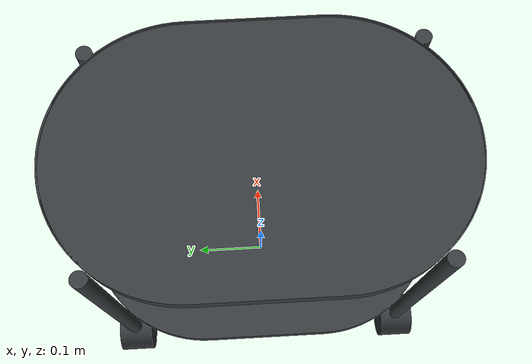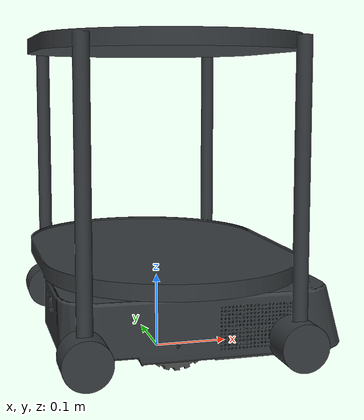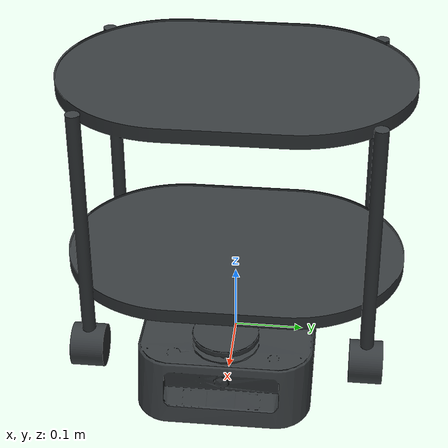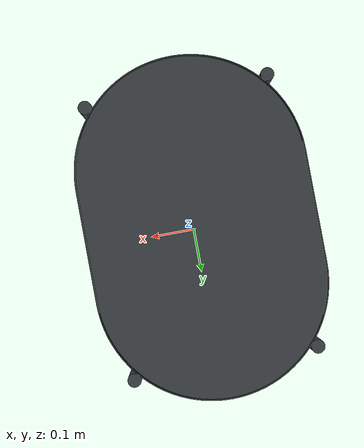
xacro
<?xml version="1.0" ?>
<robot name="erasers_kachaka" xmlns:xacro="http://ros.org/wiki/xacro">
  <xacro:include filename="$(find erasers_kachaka_description)/urdf/_kachaka.urdf.xacro" />
  <xacro:include filename="$(find kachaka_description)/urdf/_materials.urdf.xacro" />
  <xacro:include filename="$(find kachaka_description)/urdf/_values.urdf.xacro" />
  <xacro:arg name="shelf_type" default="2" />
  <xacro:property name="shelf_type" value="$(arg shelf_type)" />

  <xacro:if value="${int(shelf_type) != 0}">
    <xacro:include filename="$(find kachaka_shelf_description)/urdf/shelf.urdf.xacro" />
  </xacro:if>

  <link name="base_footprint" />
  <xacro:kachaka_robot parent="base_footprint">
    <origin xyz="0 0 0" rpy="0 0 0"/>
  </xacro:kachaka_robot>

  <xacro:if value="${int(shelf_type) != 0}">
    <xacro:kachaka_shelf shelf_type="${shelf_type}" />
  </xacro:if>
</robot>

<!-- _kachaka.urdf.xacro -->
<robot name="kachaka_robot" xmlns:xacro="http://ros.org/wiki/xacro">
  <xacro:macro name="kachaka_robot" params="parent *origin">
    <!-- base_footprint -->
    <joint name="base_footprint_joint"
          type="fixed">
      <parent link="${parent}" />
      <child link="base_link" />
      <xacro:insert_block name="origin" />
    </joint>
    <link name="base_link">
      <inertial>
        <mass value="10.0" />
        <origin xyz="0.0435 0.0 0.0475"
                rpy="0 0 0" />
        <inertia ixx="${1/12*10*(0.095**2+0.240**2)}" ixy="0" ixz="0"
                iyy="${1/12*10*(0.095**2+0.387**2)}" iyz="0"
                izz="${1/12*10*(0.387**2+0.240**2)}" />
      </inertial>
      <visual>
        <origin rpy="0 0 0" xyz="-0.150 -0.120 0.0"/>
        <geometry>
          <mesh filename="package://kachaka_description/meshes/kachaka/body.stl"/>
        </geometry>
        <material name="body" />
      </visual>
      <collision>
        <origin xyz="0.0435 0.0 0.0475"
                rpy="0 0 0" />
        <geometry>
          <box size="0.387 0.240 0.095" />
        </geometry>
        <material name="body" />
      </collision>
    </link>

    <!-- Wheel(right) -->
    <joint name="base_r_drive_wheel_joint"
          type="continuous">
      <parent link="base_link" />
      <child link="base_r_drive_wheel_link" />
      <origin rpy="0 0 0"
              xyz="0.0 -0.100 0.045" />
      <axis xyz="0 1 0" />
      <limit velocity="10"
            effort="100" />
    </joint>
    <link name="base_r_drive_wheel_link">
      <inertial>
        <mass value="0.2" /> <!-- TODO - Update mass value -->
        <origin xyz="0 0 0"
                rpy="${PI / 2.0} 0 0" />
        <!-- Bug - inertial rotation is not reflected in Rviz2 -->
        <!-- https://github.com/ros2/rviz/pull/1316 -->
        <inertia ixx="${1/12*0.2*(3*0.045**2+0.025**2)}" ixy="0" ixz="0"
                iyy="${1/12*0.2*(3*0.045**2+0.025**2)}" iyz="0"
                izz="${1/2*0.2*(0.045**2)}" />
      </inertial>
      <visual>
        <origin rpy="0 0 0" xyz="0 0 0"/>
        <geometry>
          <mesh filename="package://kachaka_description/meshes/kachaka/right_tire.stl" scale="1.0 1.0 1.0"/>
        </geometry>
        <material name="tire" />
      </visual>
      <collision>
        <origin xyz="0 0 0"
                rpy="${PI / 2.0} 0 0" />
        <geometry>
          <cylinder length="0.025"
                    radius="0.045" />
        </geometry>
        <material name="tire" />
      </collision>
    </link>

    <!-- Wheel(left) -->
    <joint name="base_l_drive_wheel_joint"
          type="continuous">
      <parent link="base_link" />
      <child link="base_l_drive_wheel_link" />
      <origin rpy="0 0 0"
              xyz="0.0 0.100 0.045" />
      <axis xyz="0 1 0" />
      <limit velocity="10"
            effort="100" />
    </joint>
    <link name="base_l_drive_wheel_link">
      <inertial>
        <mass value="0.2" />
        <origin xyz="0 0 0"
                rpy="${PI / 2.0} 0 0" />
        <!-- Bug - inertial rotation is not reflected in Rviz2 -->
        <!-- https://github.com/ros2/rviz/pull/1316 -->
        <inertia ixx="${1/12*0.2*(3*0.045**2+0.025**2)}" ixy="0" ixz="0"
                iyy="${1/12*0.2*(3*0.045**2+0.025**2)}" iyz="0"
                izz="${1/2*0.2*(0.045**2)}" />
      </inertial>
      <visual>
        <origin xyz="0 0 0"
                rpy="0 0 0" />
        <geometry>
          <mesh filename="package://kachaka_description/meshes/kachaka/left_tire.stl" scale="1.0 1.0 1.0"/>
        </geometry>
        <material name="tire" />
      </visual>
      <collision>
        <origin xyz="0 0 0"
                rpy="${PI / 2.0} 0 0" />
        <geometry>
          <cylinder length="0.025"
                    radius="0.045" />
        </geometry>
        <material name="tire" />
      </collision>
    </link>

    <!-- 2D LiDAR -->
    <joint name="lidar_joint"
          type="fixed">
      <parent link="base_link" />
      <child link="laser_frame" />
      <origin rpy="0 0 ${PI / 2.0}"
              xyz="0.156 0 0.1049" />
    </joint>
    <link name="laser_frame" />

    <!-- Camera(front) -->
    <joint name="camera_front_joint"
          type="fixed">
      <parent link="base_link" />
      <child link="camera_front" />
      <origin rpy="-${PI / 2.0} 0 -${PI / 2.0}"
              xyz="${0.2196 - 0.01} 0 0.070" />
    </joint>
    <link name="camera_front" />

    <!-- Camera(back) -->
    <joint name="camera_back_joint"
          type="fixed">
      <parent link="base_link" />
      <child link="camera_back" />
      <origin rpy="-${PI / 2.0} 0 ${PI / 2.0}"
              xyz="${-0.150 + 0.01} 0 0.070" />
    </joint>
    <link name="camera_back" />

    <!-- ToF camera -->
    <joint name="tof_joint"
          type="fixed">
      <parent link="base_link" />
      <child link="tof_camera" />
      <origin rpy="-${PI / 4.0} 0 -${PI / 2.0}"
              xyz="0.221 0.0 0.0418" />
    </joint>
    <link name="tof_camera" />

    <!-- Docking -->
    <joint name="docking_joint"
          type="prismatic">
      <parent link="base_link" />
      <child link="docking_link" />
      <axis xyz="0 0 1.0" />
      <origin rpy="0 0 0"
              xyz="0 0 0" />
      <limit lower="0.0"
            upper="0.012"
            effort="1.0"
            velocity="1.0" />
    </joint>
    <link name="docking_link">
      <inertial>
        <mass value="0.2" /> <!-- TODO - Update mass value -->
        <origin xyz="0 0 0.1075"
                rpy="0 0 0" />
        <inertia ixx="${1/12*0.2*(3*0.025**2+0.015**2)}" ixy="0" ixz="0"
                 iyy="${1/12*0.2*(3*0.025**2+0.015**2)}" iyz="0"
                 izz="${1/2*0.2*(0.025**2)}" />
      </inertial>
      <visual>
        <geometry>
          <mesh filename="package://kachaka_description/meshes/kachaka/solenoid.stl"
                scale="1.0 1.0 1.0" />
        </geometry>
        <material name="body" />
      </visual>
      <collision>
        <origin xyz="0 0 0.1075"
                rpy="0 0 0" />
        <geometry>
          <cylinder length="0.015"
                    radius="0.025" />
        </geometry>
        <material name="body" />
      </collision>
    </link>

    <!-- IMU -->
    <joint name="imu_joint"
          type="fixed">
      <parent link="base_link" />
      <child link="imu_link" />
      <origin rpy="0 0 0"
              xyz="0.0756 -0.0655 0.05146" />
    </joint>
    <link name="imu_link" />
  </xacro:macro>
</robot>

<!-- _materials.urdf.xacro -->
<robot xmlns:xacro="http://ros.org/wiki/xacro">
  <material name="body">
    <color rgba="0.2175 0.2355 0.246 1.0" />
  </material>
  <material name="tire">
    <color rgba="0.3 0.3 0.3 1.0" />
  </material>
  <material name="black">
    <color rgba="0.0 0.0 0.0 1.0" />
  </material>
</robot>

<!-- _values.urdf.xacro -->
<robot xmlns:xacro="http://ros.org/wiki/xacro">
    <xacro:property name="PI"
                    value="3.141592653589793" />
</robot>

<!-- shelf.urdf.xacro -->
<robot name="kachaka_shelf" xmlns:xacro="http://ros.org/wiki/xacro">
    <xacro:macro name="kachaka_shelf" params="shelf_type">
        <xacro:if value="${shelf_type == 2}">
            <link name="shelf_base_link">
                <visual>
                <geometry>
                    <mesh filename="package://erasers_kachaka_description/meshes/kachaka_shelf_2layer.stl" scale="0.001 0.001 0.001"/>
                </geometry>
                <material name="body"/>
                </visual>
                <collision>
                <geometry>
                    <mesh filename="package://erasers_kachaka_description/meshes/kachaka_shelf_2layer.stl" scale="0.001 0.001 0.001"/>
                </geometry>
                </collision>
            </link>
            <link name="shelf_top_plate_link"/>
            <joint name="top_plate_link" type="fixed">
                <parent link="shelf_base_link" />
                <child link="shelf_top_plate_link" />
                <origin rpy="0 0 0" xyz="0 0 0.2979"/>
            </joint>
        </xacro:if>
        <xacro:if value="${shelf_type == 3}">
            <link name="shelf_base_link">
                <visual>
                <geometry>
                    <mesh filename="package://erasers_kachaka_description/meshes/kachaka_shelf_3layer.stl" scale="0.001 0.001 0.001"/>
                </geometry>
                <material name="body"/>
                </visual>
                <collision>
                <geometry>
                    <mesh filename="package://erasers_kachaka_description/meshes/kachaka_shelf_3layer.stl" scale="0.001 0.001 0.001"/>
                </geometry>
                </collision>
            </link>
            <link name="shelf_middle_plate_link"/>
            <joint name="middle_plate_link" type="fixed">
                <parent link="shelf_base_link" />
                <child link="shelf_middle_plate_link" />
                <origin rpy="0 0 0" xyz="0 0 0.3479"/>
            </joint>
            <link name="shelf_top_plate_link"/>
            <joint name="top_plate_link" type="fixed">
                <parent link="shelf_base_link" />
                <child link="shelf_top_plate_link" />
                <origin rpy="0 0 0" xyz="0 0 0.562"/>
            </joint>
        </xacro:if>
        <link name="shelf_buttom_plate_link"/>
            <joint name="buttom_plate_link" type="fixed">
                <parent link="shelf_base_link" />
                <child link="shelf_buttom_plate_link" />
                <origin rpy="0 0 0" xyz="0 0 0.0169"/>
        </joint>
        <joint name="docking_to_shelf_joint" type="fixed">
            <parent link="docking_link" />
            <child link="shelf_base_link" />
            <origin rpy="0 0 0" xyz="0 0 0.124"/>
        </joint>
    </xacro:macro>
</robot>
